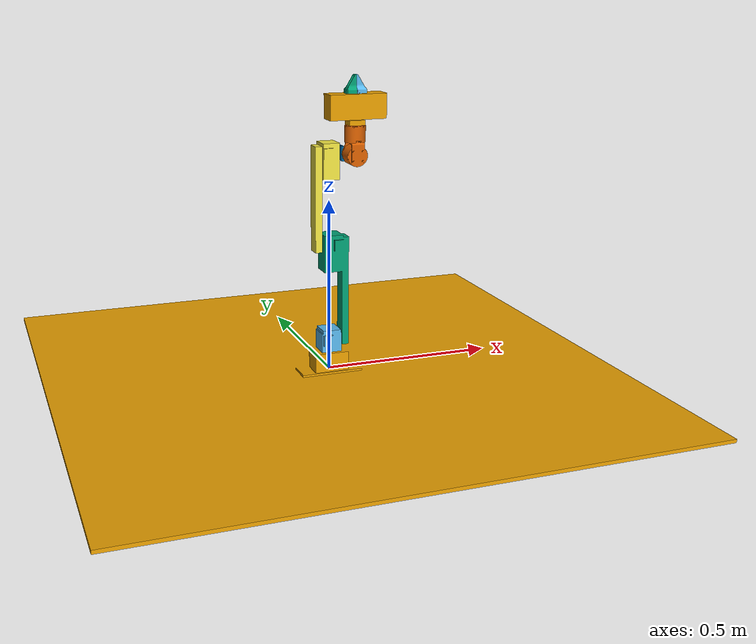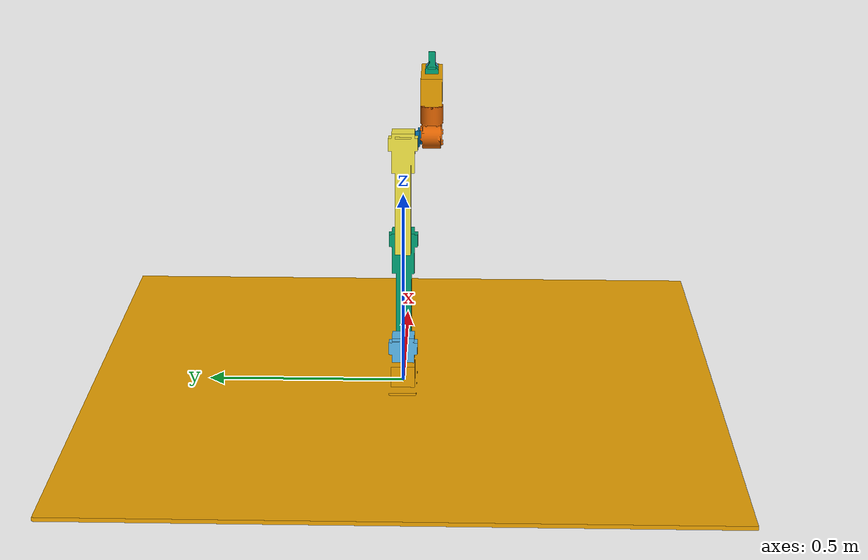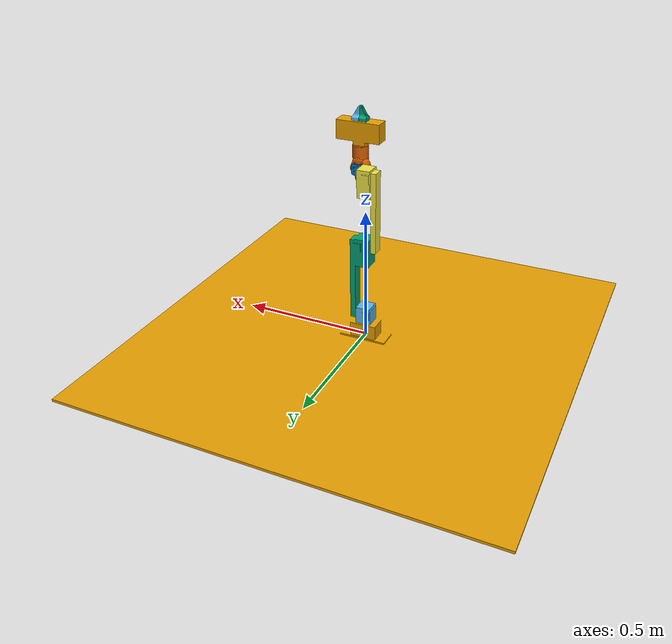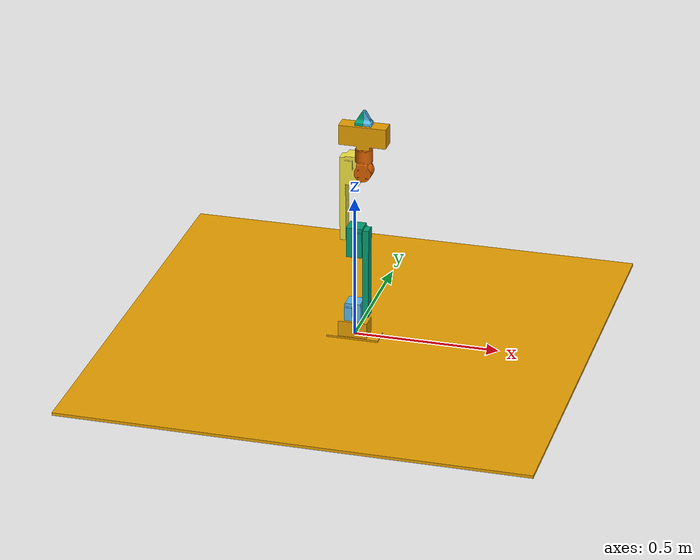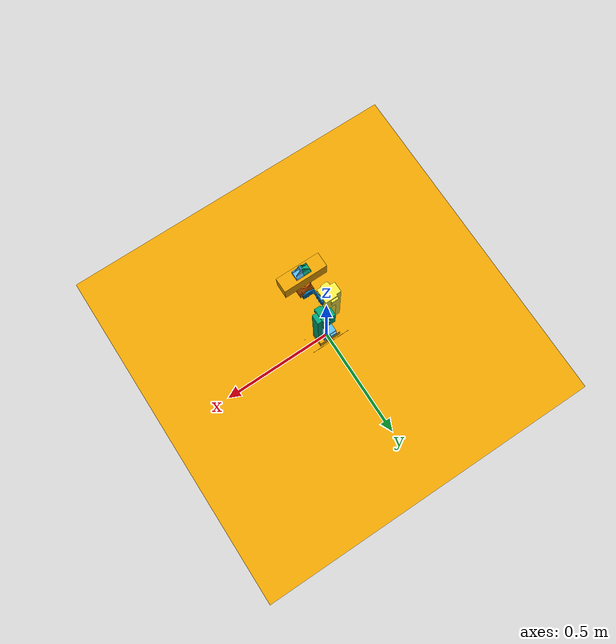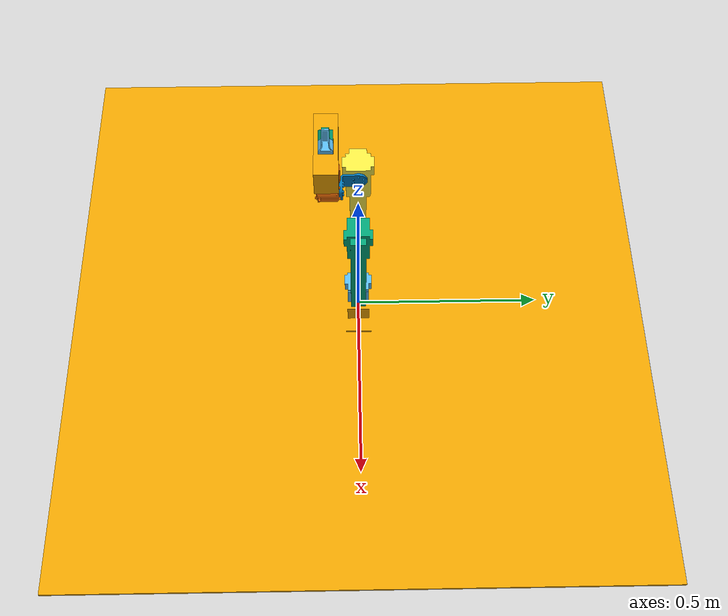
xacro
<?xml version="1.0"?>
<robot xmlns:xacro="http://www.ros.org/wiki/xacro" name="ulixarm">

  <xacro:property name="MANIPULATOR_PREFIX" value="manipulator_"/>
  <xacro:property name="GRIPPER_PREFIX" value="gripper_"/>

  <!-- Include xacro files -->
  <xacro:include filename="$(find ulixarm_description)/urdf/manipulator.urdf.xacro"/>
  <xacro:include filename="$(find ulixarm_description)/urdf/gripper.urdf.xacro"/>

  <xacro:manipulator_macro prefix="${MANIPULATOR_PREFIX}"/>
  <xacro:gripper_macro prefix="${GRIPPER_PREFIX}"/>

  <!-- Attach gripper base to the arm's end-effector link -->
  <joint name="manipulator_to_gripper" type="fixed">
    <parent link="${MANIPULATOR_PREFIX}tool0"/>
    <child  link="${GRIPPER_PREFIX}base_link"/>
    <origin xyz="0 0 0" rpy="0 0 0"/>
  </joint>

</robot>

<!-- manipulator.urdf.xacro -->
<robot xmlns:xacro="http://www.ros.org/wiki/xacro">

    <xacro:macro name="manipulator_macro" params="prefix">

        <!-- CONSTANTS -->

        <xacro:property name="PI" value="3.14159265359"/>
        <xacro:property name="velocity_limit_DM4340"   value="8.0"/>
        <xacro:property name="effort_limit_DM4340"  value="27.0"/>
        <xacro:property name="velocity_limit_DM4310"   value="30.0"/>
        <xacro:property name="effort_limit_DM4310"  value="10.0"/>

        <!-- LINKS -->

        <link name="${prefix}base_link">
            <visual>
                <origin xyz="0. 0. 0."/>
                <geometry>
                    <mesh filename="package://ulixarm_description/meshes/visual/base.stl"/>
                </geometry>
            </visual>
            <collision>
                <origin xyz="0. 0. 0."/>
                <geometry>
                    <mesh filename="package://ulixarm_description/meshes/collision/base.stl"/>
                </geometry>
            </collision>
        </link>

        <link name="${prefix}link1">
            <visual>
                <origin xyz="0. 0. 0."/>
                <geometry>
                    <mesh filename="package://ulixarm_description/meshes/visual/joint1.stl"/>
                </geometry>
            </visual>
            <collision>
                <origin xyz="0. 0. 0."/>
                <geometry>
                    <mesh filename="package://ulixarm_description/meshes/collision/joint1.stl"/>
                </geometry>
            </collision>
            <inertial>
                <origin xyz="0. 0. 0.037"/>
                <mass value="0.480"/>
                <inertia ixx="0.0001" ixy="0.0" ixz="0.0" iyy="0.0001" iyz="0.0" izz="0.0001"/>
            </inertial>
        </link>

        <link name="${prefix}link2">
            <visual>
                <origin xyz="0. 0. 0."/>
                <geometry>
                    <mesh filename="package://ulixarm_description/meshes/visual/link1.stl"/>
                </geometry>
            </visual>
            <collision>
                <origin xyz="0. 0. 0."/>
                <geometry>
                    <mesh filename="package://ulixarm_description/meshes/collision/link1.stl"/>
                </geometry>
            </collision>
            <inertial>
                <origin xyz="0.197 0. -0.004"/>
                <mass value="0.690"/>
                <inertia ixx="0.0001" ixy="0.0" ixz="0.0" iyy="0.0001" iyz="0.0" izz="0.0001"/>
            </inertial>
        </link>

        <link name="${prefix}link3">
            <visual>
                <origin xyz="0. 0. 0."/>
                <geometry>
                    <mesh filename="package://ulixarm_description/meshes/visual/link2.stl"/>
                </geometry>
            </visual>
            <collision>
                <origin xyz="0. 0. 0."/>
                <geometry>
                    <mesh filename="package://ulixarm_description/meshes/collision/link2.stl"/>
                </geometry>
            </collision>
            <inertial>
                <origin xyz="0.197 0. -0.004"/>
                <mass value="0.680"/>
                <inertia ixx="0.0001" ixy="0.0" ixz="0.0" iyy="0.0001" iyz="0.0" izz="0.0001"/>
            </inertial>
        </link>

        <link name="${prefix}link4">
            <visual>
                <origin xyz="0. 0. 0."/>
                <geometry>
                    <mesh filename="package://ulixarm_description/meshes/visual/joint4.stl"/>
                </geometry>
            </visual>
            <collision>
                <origin xyz="0. 0. 0."/>
                <geometry>
                    <mesh filename="package://ulixarm_description/meshes/collision/joint4.stl"/>
                </geometry>
            </collision>
            <inertial>
                <origin xyz="0.022 0.0 0.018"/>
                <mass value="0.100"/>
                <inertia ixx="0.0001" ixy="0.0" ixz="0.0" iyy="0.0001" iyz="0.0" izz="0.0001"/>
            </inertial>
        </link>

        <link name="${prefix}link5">
            <visual>
                <origin xyz="0. 0. 0."/>
                <geometry>
                    <mesh filename="package://ulixarm_description/meshes/visual/joint5.stl"/>
                </geometry>
            </visual>
            <collision>
                <origin xyz="0. 0. 0."/>
                <geometry>
                    <mesh filename="package://ulixarm_description/meshes/collision/joint5.stl"/>
                </geometry>
            </collision>
            <inertial>
                <origin xyz="0.030 0.0 -0.023"/>
                <mass value="0.700"/>
                <inertia ixx="0.0001" ixy="0.0" ixz="0.0" iyy="0.0001" iyz="0.0" izz="0.0001"/>
            </inertial>
        </link>

        <link name="${prefix}link6">
            <inertial>
                <origin xyz="0. 0. 0."/>
                <mass value="0.001"/>
                <inertia ixx="0.0001" ixy="0.0" ixz="0.0" iyy="0.0001" iyz="0.0" izz="0.0001"/>
            </inertial>
        </link>

        <link name="${prefix}tool0">
            <inertial>
                <origin xyz="0. 0. 0."/>
                <mass value="0.001"/>
                <inertia ixx="0.0001" ixy="0.0" ixz="0.0" iyy="0.0001" iyz="0.0" izz="0.0001"/>
            </inertial>
        </link>

        <!-- JOINTS -->

        <joint name="joint1" type="revolute">
            <origin xyz="0. 0. 0.0533" rpy="0. 0. 0."/>
            <parent link="${prefix}base_link"/>
            <child link="${prefix}link1"/>
            <axis xyz="0 0 1"/>
            <limit lower="${-PI/2}" upper="${PI/2}" velocity="${velocity_limit_DM4340}" effort="${effort_limit_DM4340}"/>
        </joint>

        <joint name="joint2" type="revolute">
            <origin xyz="0.027175 0. 0.0425" rpy="${PI} ${-PI/2} 0."/>
            <parent link="${prefix}link1"/>
            <child link="${prefix}link2"/>
            <axis xyz="0 0 1"/>
            <limit lower="${-PI/2}" upper="${PI/2}" velocity="${velocity_limit_DM4340}" effort="${effort_limit_DM4340}"/>
        </joint>

        <joint name="joint3" type="revolute">
            <origin xyz="0.280 0. -0.0473" rpy="${PI} 0. 0."/>
            <parent link="${prefix}link2"/>
            <child link="${prefix}link3"/>
            <axis xyz="0 0 1"/>
            <limit lower="${-PI/2}" upper="2.7925268" velocity="${velocity_limit_DM4340}" effort="${effort_limit_DM4340}"/>
        </joint>

        <joint name="joint4" type="revolute">
            <origin xyz="0.260 0. -0.040" rpy="${PI} 0. ${-PI/2}"/>
            <parent link="${prefix}link3"/>
            <child link="${prefix}link4"/>
            <axis xyz="0 0 1"/>
            <limit lower="${-PI}" upper="${PI/2}" velocity="${velocity_limit_DM4310}" effort="${effort_limit_DM4310}"/>
        </joint>

        <joint name="joint5" type="revolute">
            <origin xyz="0.046 0. 0.031" rpy="${PI/2} 0. ${-PI/2}"/>
            <parent link="${prefix}link4"/>
            <child link="${prefix}link5"/>
            <axis xyz="0 0 -1"/>
            <limit lower="${-PI/2}" upper="${PI/2}" velocity="${velocity_limit_DM4310}" effort="${effort_limit_DM4310}"/>
        </joint>

        <joint name="joint6" type="revolute">
            <origin xyz="0.0825 0. -0.0235" rpy="${PI/2} 0. ${PI/2}"/>
            <parent link="${prefix}link5"/>
            <child link="${prefix}link6"/>
            <axis xyz="0 0 1"/>
            <limit lower="${-PI/2}" upper="${PI/2}" velocity="${velocity_limit_DM4310}" effort="${effort_limit_DM4310}"/>
        </joint>

        <joint name="joint_tool0" type="fixed">
            <parent link="${prefix}link6"/>
            <child link="${prefix}tool0"/>
        </joint>

    </xacro:macro>

</robot>

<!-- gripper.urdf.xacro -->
<robot xmlns:xacro="http://www.ros.org/wiki/xacro">

    <xacro:macro name="gripper_macro" params="prefix">

        <!-- CONSTANTS -->

        <xacro:property name="PI" value="3.14159265359"/>
        <xacro:property name="velocity_limit_DMJ3507"   value="0.5"/>
        <xacro:property name="effort_limit_DMJ3507"     value="0.1"/>

        <!-- LINKS -->

        <link name="${prefix}base_link">
            <visual>
                <origin xyz="0. 0. 0."/>
                <geometry>
                    <mesh filename="package://ulixarm_description/meshes/visual/gripper_base.stl"/>
                </geometry>
            </visual>
            <collision>
                <origin xyz="0. 0. 0."/>
                <geometry>
                    <mesh filename="package://ulixarm_description/meshes/collision/gripper_base.stl"/>
                </geometry>
            </collision>
            <inertial>
                <origin xyz="0. 0. 0.052"/>
                <mass value="1.000"/>
                <inertia ixx="0.0001" ixy="0.0" ixz="0.0" iyy="0.0001" iyz="0.0" izz="0.0001"/>
            </inertial>
        </link>

        <link name="${prefix}finger_right">
            <visual>
                <origin xyz="0. 0. 0."/>
                <geometry>
                    <mesh filename="package://ulixarm_description/meshes/visual/finger.stl"/>
                </geometry>
            </visual>
            <collision>
                <origin xyz="0. 0. 0."/>
                <geometry>
                    <mesh filename="package://ulixarm_description/meshes/collision/finger.stl"/>
                </geometry>
            </collision>
            <inertial>
                <origin xyz="0.008 0.002 -0.052"/>
                <mass value="0.075"/>
                <inertia ixx="0.0001" ixy="0.0" ixz="0.0" iyy="0.0001" iyz="0.0" izz="0.0001"/>
            </inertial>
        </link>

        <link name="${prefix}finger_left">
            <visual>
                <origin xyz="0. 0. 0."/>
                <geometry>
                    <mesh filename="package://ulixarm_description/meshes/visual/finger.stl"/>
                </geometry>
            </visual>
            <collision>
                <origin xyz="0. 0. 0."/>
                <geometry>
                    <mesh filename="package://ulixarm_description/meshes/collision/finger.stl"/>
                </geometry>
            </collision>
            <inertial>
                <origin xyz="0.008 0.002 -0.052"/>
                <mass value="0.075"/>
                <inertia ixx="0.0001" ixy="0.0" ixz="0.0" iyy="0.0001" iyz="0.0" izz="0.0001"/>
            </inertial>
        </link>

        <!-- JOINTS -->

        <joint name="finger_right_joint" type="prismatic">
            <origin xyz="0. 0. 0.1349" rpy="0. 0. 0."/>
            <parent link="${prefix}base_link"/>
            <child link="${prefix}finger_right"/>
            <axis xyz="1 0 0"/>
            <limit lower="0.0" upper="0.04" velocity="${velocity_limit_DMJ3507}" effort="${effort_limit_DMJ3507}"/>
        </joint>

        <joint name="finger_left_joint" type="prismatic">
            <origin xyz="0. 0. 0.1349" rpy="0. 0. ${PI}"/>
            <parent link="${prefix}base_link"/>
            <child link="${prefix}finger_left"/>
            <axis xyz="1 0 0"/>
            <mimic joint="finger_right_joint" multiplier="1" offset="0"/>
            <limit lower="0.0" upper="0.04" velocity="${velocity_limit_DMJ3507}" effort="${effort_limit_DMJ3507}"/>
        </joint>

  </xacro:macro>

</robot>
